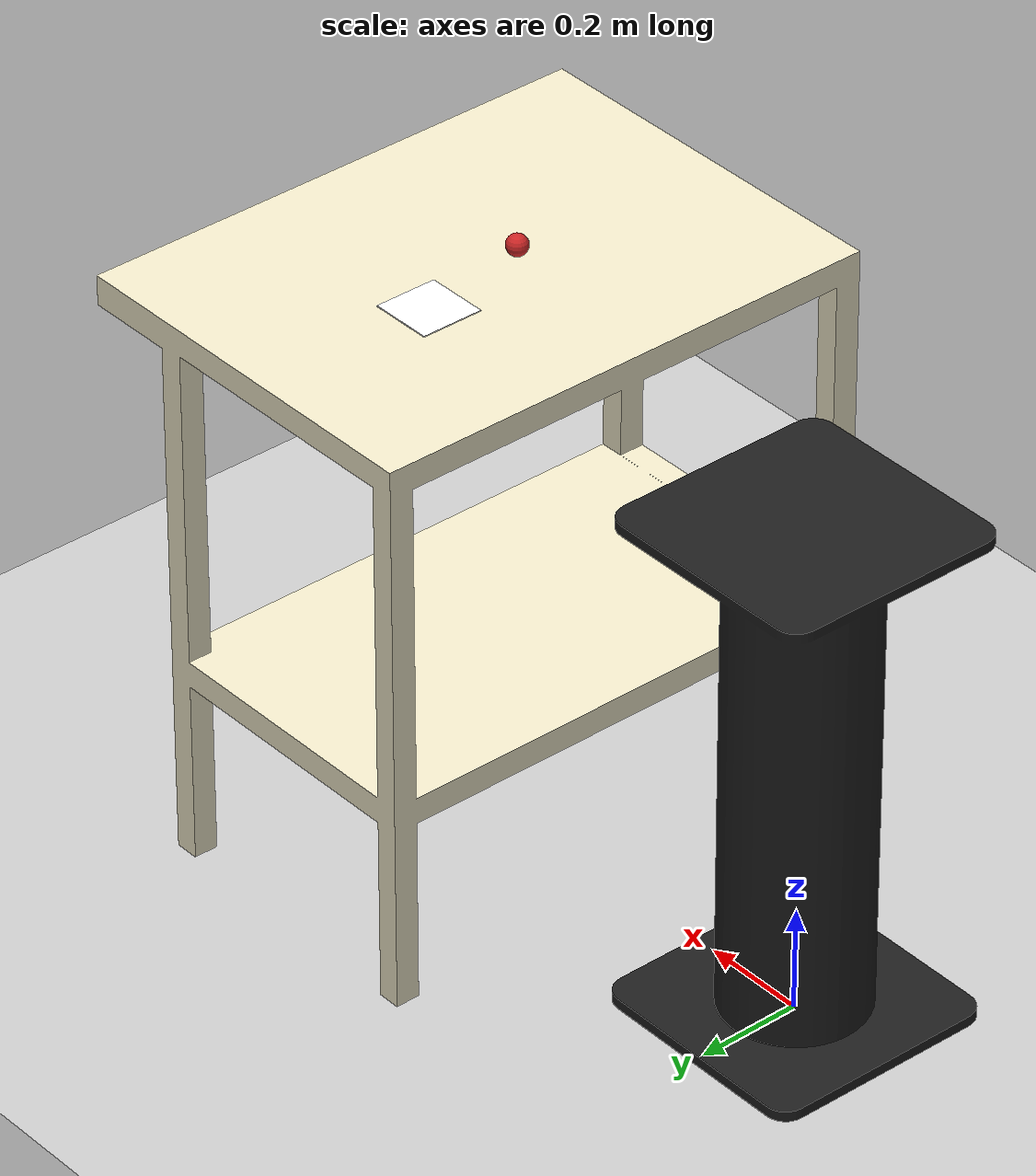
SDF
<?xml version="1.0" ?>
<sdf version="1.9">
  <world name="robot_lab">
    <physics name="1ms" type="ignored">
      <max_step_size>0.001</max_step_size>
      <real_time_factor>1.0</real_time_factor>
    </physics>
    <plugin filename="gz-sim-physics-system" name="gz::sim::systems::Physics"/>
    <plugin filename="gz-sim-user-commands-system" name="gz::sim::systems::UserCommands"/>
    <plugin filename="gz-sim-scene-broadcaster-system" name="gz::sim::systems::SceneBroadcaster"/>
    <plugin filename="gz-sim-sensors-system" name="gz::sim::systems::Sensors">
      <render_engine>ogre2</render_engine>
    </plugin>

    <light type="directional" name="sun">
      <cast_shadows>true</cast_shadows>
      <pose>0 0 10 0 0 0</pose>
      <diffuse>0.8 0.8 0.8 1</diffuse>
      <specular>0.2 0.2 0.2 1</specular>
      <attenuation>
        <range>1000</range>
        <constant>0.9</constant>
        <linear>0.01</linear>
        <quadratic>0.001</quadratic>
      </attenuation>
      <direction>-0.5 0.1 -0.9</direction>
    </light>

    <model name="ground_plane">
      <static>true</static>
      <link name="link">
        <collision name="collision">
          <geometry>
            <plane>
              <normal>0 0 1</normal>
            </plane>
          </geometry>
        </collision>
        <visual name="visual">
          <geometry>
            <plane>
              <normal>0 0 1</normal>
              <size>100 100</size>
            </plane>
          </geometry>
          <material>
            <ambient>0.8 0.8 0.8 1</ambient>
            <diffuse>0.8 0.8 0.8 1</diffuse>
            <specular>0.8 0.8 0.8 1</specular>
          </material>
        </visual>
      </link>
    </model>

    <include>
      <uri>model://abb_irb140_description/models/robot_lab_podium</uri>
      <name>robot_lab_podium</name>
      <pose>0 0 0 0 0 0</pose>
    </include>

    <model name="my_sphere">
      <pose>0.705 0 1.15 0 0 0</pose>
      <link name="sphere_link">
        <velocity_decay>
          <linear>0.3</linear>
          <angular>0.3</angular>
        </velocity_decay>
        <inertial>
          <mass>0.5</mass>
          <inertia>
            <ixx>0.4</ixx>
            <iyy>0.4</iyy>
            <izz>0.4</izz>
          </inertia>
        </inertial>
        <collision name="sphere_collision">
          <geometry>
            <sphere>
              <radius>0.02</radius>
            </sphere>
          </geometry>
          <surface>
            <friction>
              <ode>
                <mu>1.0</mu>
                <mu2>1.0</mu2>
              </ode>
              <torsional>
                <coefficient>1.0</coefficient>
                <use_patch_radius>true</use_patch_radius>
                <patch_radius>0.02</patch_radius>
              </torsional>
            </friction>
          </surface>
        </collision>
        <visual name="sphere_visual">
          <geometry>
            <sphere>
              <radius>0.02</radius>
            </sphere>
          </geometry>
          <material>
            <script>
              <uri>file://media/materials/scripts/gazebo.material</uri>
              <name>Gazebo/Red</name>
            </script>
          </material>
        </visual>
      </link>
    </model>
    <include>
      <uri>model://abb_irb140_description/models/robot_lab_table</uri>
      <name>robot_lab_table</name>
      <pose>1.179 0 0 0 0 0</pose>
    </include>

    <include>
      <uri>model://abb_irb140_description/models/aruco_calibration_marker</uri>
      <name>aruco_calibration_marker</name>
      <pose>0.75 0.15 1.068 0 0 0</pose>
    </include>
  </world>
</sdf>

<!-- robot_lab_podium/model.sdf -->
<sdf version="1.9">
  <model name="robot_podium">
    <static>true</static>
    <link name="base_link">
      <visual name="visual">
        <geometry>
          <mesh>
            <uri>mesh/podium.stl</uri>
            <scale>0.01 0.01 0.01</scale>
          </mesh>
        </geometry>
        <material>
          <ambient>0.12 0.12 0.12 1</ambient>
          <diffuse>0.12 0.12 0.12 1</diffuse>
          <specular>0.05 0.05 0.05 1</specular>
          <emissive>0 0 0 1</emissive>
        </material>
      </visual>
      <collision name="collision">
        <geometry>
          <mesh>
            <uri>mesh/podium.stl</uri>
            <scale>0.01 0.01 0.01</scale>
          </mesh>
        </geometry>
      </collision>
    </link>
  </model>
</sdf>

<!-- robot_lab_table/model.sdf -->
<sdf version="1.9">
  <model name="robot_lab_table">
    <static>true</static>
    <link name="base_link">
      <visual name="visual">
        <geometry>
          <mesh>
            <uri>mesh/robot_lab_table.stl</uri>
          </mesh>
        </geometry>
        <material>
          <ambient>0.95 0.92 0.80 1</ambient>
          <diffuse>0.95 0.92 0.80 1</diffuse>
          <specular>0.3 0.3 0.28 1</specular>
          <emissive>0 0 0 1</emissive>
        </material>
      </visual>
      <collision name="collision">
        <geometry>
          <mesh>
            <uri>mesh/robot_lab_table.stl</uri>
          </mesh>
        </geometry>
        <surface>
          <friction>
            <ode>
              <mu>1.0</mu>
              <mu2>1.0</mu2>
            </ode>
            <torsional>
              <coefficient>1.0</coefficient>
            </torsional>
          </friction>
        </surface>
      </collision>
    </link>
  </model>
</sdf>

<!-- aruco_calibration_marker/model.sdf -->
<sdf version="1.9">
  <model name="aruco_calibration_marker">
    <static>true</static>
    <link name="marker_link">
      <visual name="marker_visual">
        <geometry>
          <box>
            <size>0.12 0.12 0.002</size>
          </box>
        </geometry>
        <material>
          <ambient>1 1 1 1</ambient>
          <diffuse>1 1 1 1</diffuse>
          <specular>0.1 0.1 0.1 1</specular>
          <pbr>
            <metal>
              <albedo_map>materials/textures/marker_0.png</albedo_map>
              <roughness>0.8</roughness>
              <metalness>0.0</metalness>
            </metal>
          </pbr>
        </material>
      </visual>
      <collision name="marker_collision">
        <geometry>
          <box>
            <size>0.12 0.12 0.002</size>
          </box>
        </geometry>
      </collision>
    </link>
  </model>
</sdf>
